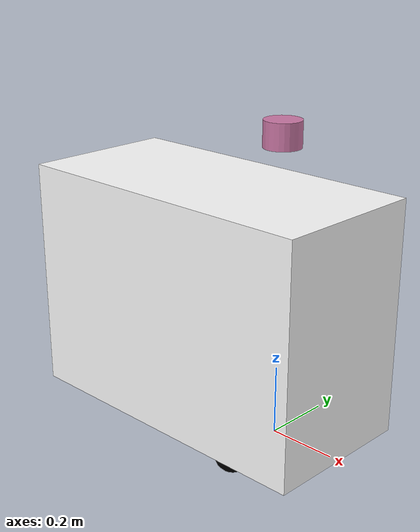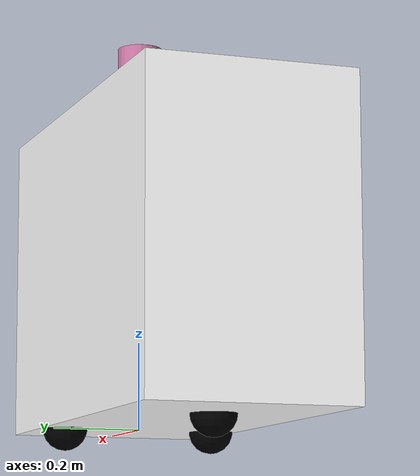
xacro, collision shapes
<?xml version="1.0"?>
<robot xmlns:xacro="http://www.ros.org/wiki/xacro" name="amr">

    <xacro:arg name="use_ros2_control" default="true"/>

    <xacro:include filename="amr_core.xacro"/>

    <xacro:if value="$(arg use_ros2_control)">
      <xacro:include filename="ros2_control.xacro" />
    </xacro:if>
    <xacro:unless value="$(arg use_ros2_control)">
      <xacro:include filename="gazebo_control.xacro" />
    </xacro:unless>

    <!-- Lidar -->
    <xacro:include filename="$(find velodyne_description)/urdf/VLP-16.urdf.xacro"/>
    <xacro:VLP-16 parent="chassis" name="lidar_frame" topic="/velodyne" organize_cloud="false" hz="10" samples="440"  max_range="3" gpu="true">
      <origin xyz="0.73 0 0.825" rpy="0 0 0" />
    </xacro:VLP-16>
    <!-- ARM -->
</robot>

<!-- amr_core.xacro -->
<robot xmlns:xacro="http://www.ros.org/wiki/xacro" >

    <xacro:include filename="inertial_macros.xacro"/>

    <material name="white">
        <color rgba="1 1 1 1 "/>
    </material >
    <material name="black">
        <color rgba="0 0 0 1 "/>
    </material >

    <!-- BASE_LINK -->
    <link name="base_link">
    </link>

    <!-- BASE_FOOTPRINT LINK -->
    <joint name="base_footprint_joint" type="fixed">
        <parent link="base_link"/>
        <child link="base_footprint"/>
        <origin xyz="0.0 0.0 0.0" rpy="0 0 0"/>
    </joint>
    <link name="base_footprint">
    </link>

    <!-- CHASSIS_LINK -->
    <joint name="chassis_join" type="fixed">
        <parent link="base_link"/>
        <child link="chassis"/>
        <origin xyz="-0.73 0.0 0.0"/>
    </joint>

    <link name="chassis">
        <visual>
            <origin xyz="0.48 0.0 0.345"/>
            <geometry>
                <box size="0.96 0.46 0.69"/>
            </geometry>
            <material name="white"/>
        </visual>
        <collision>
            <origin xyz="0.48 0.0 0.345"/>
            <geometry>
                <box size="0.96 0.46 0.69"/>
            </geometry>
        </collision>
        <xacro:inertial_box mass="0.5" x="0.96" y="0.46" z="0.69">
            <origin xyz="0.48 0.0 0.345" rpy="0 0 0"/>
        </xacro:inertial_box>
    </link>

    <gazebo reference="chassis">
        <material>Gazebo/White</material>
    </gazebo>

    <!-- LEFT_WHEEL_LINK -->
    <joint name="left_wheel_joint" type="continuous">
        <parent link="base_link"/>
        <child link="left_wheel"/>
        <origin xyz="0.0 0.175 0.0" rpy="-${pi/2} 0 0"/>
        <axis xyz="0 0 1"/>
    </joint>
    <link name="left_wheel">
        <visual>
            <origin xyz="0.0 0.0 0.0" rpy="0.0 0.0 0.0"/>
            <geometry>
                <cylinder radius="0.05" length="0.04"/>
            </geometry>
            <material name="black"/>
        </visual>
        <collision>
            <origin xyz="0.0 0.0 0.0" rpy="0.0 0.0 0.0"/>
            <geometry>
                <sphere radius="0.05" />
            </geometry>
        </collision>
        <xacro:inertial_cylinder mass="0.2" length="0.04" radius="0.05">
            <origin xyz="0 0 0" rpy="0 0 0"/>
        </xacro:inertial_cylinder>
    </link>

    <gazebo reference="left_wheel">
        <material>Gazebo/Black</material>
    </gazebo>

    <!-- RIGHT_WHEEL_LINK -->
    <joint name="right_wheel_joint" type="continuous">
        <parent link="base_link"/>
        <child link="right_wheel"/>
        <origin xyz="0.0 -0.175 0.0" rpy="${pi/2} 0 0"/>
        <axis xyz="0 0 -1"/>
    </joint>
    <link name="right_wheel">
        <visual>
            <origin xyz="0.0 0.0 0.0" rpy="0.0 0.0 0.0"/>
            <geometry>
                <cylinder radius="0.05" length="0.04"/>
            </geometry>
            <material name="black"/>
        </visual>
        <collision>
            <origin xyz="0.0 0.0 0.0" rpy="0.0 0.0 0.0"/>
            <geometry>
                <sphere radius="0.05" />
            </geometry>
        </collision>
        <xacro:inertial_cylinder mass="0.2" length="0.04" radius="0.05">
            <origin xyz="0 0 0" rpy="0 0 0"/>
        </xacro:inertial_cylinder>
    </link>

    <gazebo reference="right_wheel">
        <material>Gazebo/Black</material>
    </gazebo>

    <!-- CASTER_WHEEL_LINK -->
    <joint name="caster_wheel_joint" type="fixed">
        <parent link="chassis"/>
        <child link="caster_wheel"/>
        <origin xyz="0.24 0.0 0.0"/>
    </joint>
    <link name="caster_wheel">
        <visual>
            <geometry>
                <sphere radius="0.05"/>
            </geometry>
            <material name="black"/>
        </visual>
        <collision>
            <geometry>
                <sphere radius="0.05"/>
            </geometry>
        </collision>
        <xacro:inertial_sphere mass="0.2" radius="0.05">
            <origin xyz="0 0 0" rpy="0 0 0"/>
        </xacro:inertial_sphere>
    </link>

    <gazebo reference="caster_wheel">
        <material>Gazebo/Black</material>
        <mu1 value="0.001"/>
        <mu2 value="0.001"/>
    </gazebo>
</robot>

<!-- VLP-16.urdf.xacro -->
<robot xmlns:xacro="http://www.ros.org/wiki/xacro" name="VLP-16">
  <xacro:property name="M_PI" value="3.1415926535897931" />
  <xacro:macro name="VLP-16" params="*origin is_sim:=true parent:=base_link name:=velodyne tf_prefix:='' topic:=/velodyne_points organize_cloud:=false hz:=10 lasers:=16 samples:=1875 collision_range:=0.3 min_range:=0.0 max_range:=100.0 noise:=0.008 min_angle:=-${M_PI} max_angle:=${M_PI} gpu:=false">

    <joint name="${name}_base_mount_joint" type="fixed">
      <xacro:insert_block name="origin" />
      <parent link="${parent}"/>
      <child link="${name}_base_link"/>
    </joint>

    <link name="${name}_base_link">
      <inertial>
        <mass value="0.83"/>
        <origin xyz="0 0 0.03585"/>
        <inertia ixx="${(0.83 * (3.0*0.0516*0.0516 + 0.0717*0.0717)) / 12.0}" ixy="0" ixz="0"
          iyy="${(0.83 * (3.0*0.0516*0.0516 + 0.0717*0.0717)) / 12.0}" iyz="0"
          izz="${0.5 * 0.83 * (0.0516*0.0516)}"/>
      </inertial>
      <visual>
        <geometry>
          <mesh filename="package://velodyne_description/meshes/VLP16_base_1.dae" />
        </geometry>
      </visual>
      <visual>
        <geometry>
          <mesh filename="package://velodyne_description/meshes/VLP16_base_2.dae" />
        </geometry>
      </visual>
      <collision>
        <origin rpy="0 0 0" xyz="0 0 0.03585"/>
        <geometry>
          <cylinder radius="0.0516" length="0.0717"/>
        </geometry>
      </collision>
    </link>

    <joint name="${name}_base_scan_joint" type="fixed" >
      <origin xyz="0 0 0.0377" rpy="0 0 0" />
      <parent link="${name}_base_link" />
      <child link="${name}"/>
    </joint>

    <link name="${name}">
      <inertial>
        <mass value="0.01"/>
        <origin xyz="0 0 0"/>
        <inertia ixx="1e-7" ixy="0" ixz="0" iyy="1e-7" iyz="0" izz="1e-7"/>
      </inertial>
      <visual>
        <origin xyz="0 0 -0.0377" />
        <geometry>
          <mesh filename="package://velodyne_description/meshes/VLP16_scan.dae" />
        </geometry>
      </visual>
      <collision>
        <geometry>
          <sphere radius="0"/>
        </geometry>
      </collision>
    </link>

    <!-- Gazebo requires the velodyne_gazebo_plugins package -->
    <xacro:if value="${is_sim}">
        <gazebo reference="${name}">
            <xacro:if value="${gpu}">
                <sensor type="gpu_ray" name="${name}-VLP16">
                <pose>0 0 0 0 0 0</pose>
                <visualize>false</visualize>
                <update_rate>${hz}</update_rate>
                <ray>
                    <scan>
                    <horizontal>
                        <samples>${samples}</samples>
                        <resolution>1</resolution>
                        <min_angle>${min_angle}</min_angle>
                        <max_angle>${max_angle}</max_angle>
                    </horizontal>
                    <vertical>
                        <samples>${lasers}</samples>
                        <resolution>1</resolution>
                        <min_angle>-${15.0*M_PI/180.0}</min_angle>
                        <max_angle> ${15.0*M_PI/180.0}</max_angle>
                    </vertical>
                    </scan>
                    <range>
                    <min>${collision_range}</min>
                    <max>${max_range+1}</max>
                    <resolution>0.001</resolution>
                    </range>
                    <noise>
                    <type>gaussian</type>
                    <mean>0.0</mean>
                    <stddev>0.0</stddev>
                    </noise>
                </ray>
                <plugin name="gazebo_ros_laser_controller" filename="libgazebo_ros_velodyne_laser.so">
                    <ros>
                    <namespace>/${name}</namespace>
                    <remapping>~/out:=${topic}</remapping>
                    </ros>
                    <tf_prefix>${tf_prefix}</tf_prefix>
                    <frame_name>${name}</frame_name>
                    <organize_cloud>${organize_cloud}</organize_cloud>
                    <min_range>${min_range}</min_range>
                    <max_range>${max_range}</max_range>
                    <gaussian_noise>${noise}</gaussian_noise>
                </plugin>
                </sensor>
            </xacro:if>
            <xacro:unless value="${gpu}">
                <sensor type="ray" name="${name}-VLP16">
                <pose>0 0 0 0 0 0</pose>
                <visualize>false</visualize>
                <update_rate>${hz}</update_rate>
                <ray>
                    <scan>
                    <horizontal>
                        <samples>${samples}</samples>
                        <resolution>1</resolution>
                        <min_angle>${min_angle}</min_angle>
                        <max_angle>${max_angle}</max_angle>
                    </horizontal>
                    <vertical>
                        <samples>${lasers}</samples>
                        <resolution>1</resolution>
                        <min_angle>-${15.0*M_PI/180.0}</min_angle>
                        <max_angle> ${15.0*M_PI/180.0}</max_angle>
                    </vertical>
                    </scan>
                    <range>
                    <min>${collision_range}</min>
                    <max>${max_range+1}</max>
                    <resolution>0.001</resolution>
                    </range>
                    <noise>
                    <type>gaussian</type>
                    <mean>0.0</mean>
                    <stddev>0.0</stddev>
                    </noise>
                </ray>
                <plugin name="gazebo_ros_laser_controller" filename="libgazebo_ros_velodyne_laser.so">
                    <ros>
                    <namespace>/${name}</namespace>
                    <remapping>~/out:=${topic}</remapping>
                    </ros>
                    <tf_prefix>${tf_prefix}</tf_prefix>
                    <frame_name>${name}</frame_name>
                    <organize_cloud>${organize_cloud}</organize_cloud>
                    <min_range>${min_range}</min_range>
                    <max_range>${max_range}</max_range>
                    <gaussian_noise>${noise}</gaussian_noise>
                </plugin>
                </sensor>
            </xacro:unless>
        </gazebo>
    </xacro:if>

  </xacro:macro>
</robot>
